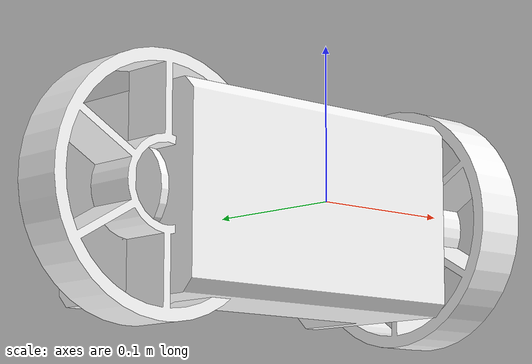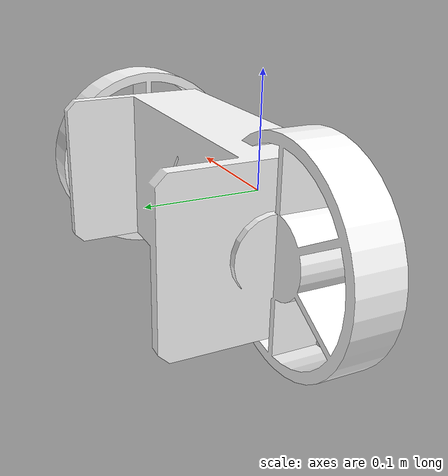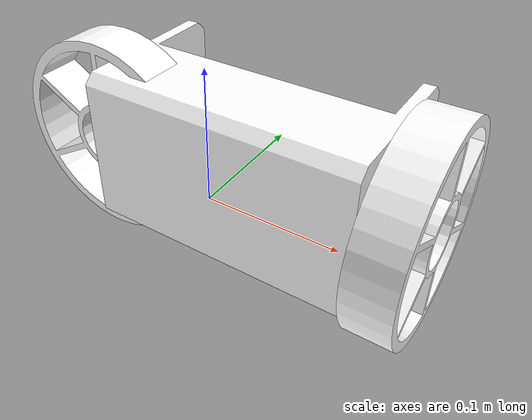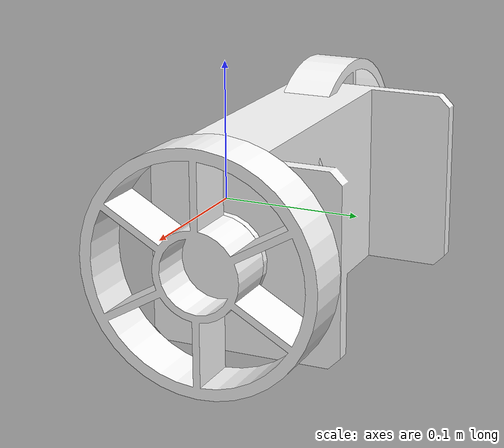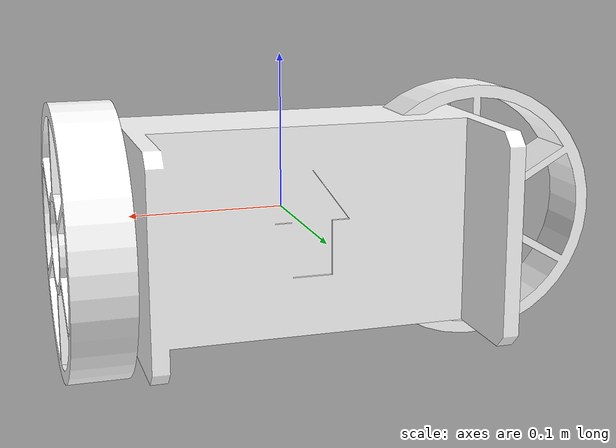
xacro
<?xml version="1.0" encoding="utf-8"?>
<robot
  name="bp001_description">
  <link
    name="base_link">
    <inertial>
      <origin
        xyz="7.75919318807567E-19 0.0409942367796753 -3.55522513016651E-06"
        rpy="0 0 0" />
      <mass
        value="2.25389477631104" />
      <inertia
        ixx="0.00466922459360897"
        ixy="1.20415183424488E-19"
        ixz="3.12268591715857E-19"
        iyy="0.0133992461285469"
        iyz="2.40439281764469E-07"
        izz="0.0118661025979557" />
    </inertial>
    <visual>
      <origin
        xyz="0 0 0"
        rpy="0 0 0" />
      <geometry>
        <mesh
          filename="package://bp001_description/meshes/visual/base_link.STL" />
      </geometry>
      <material
        name="">
        <color
          rgba="1 1 1 1" />
      </material>
    </visual>
    <collision>
      <origin
        xyz="0 0 0"
        rpy="0 0 0" />
      <geometry>
        <mesh
          filename="package://bp001_description/meshes/collision/base_link.STL" />
      </geometry>
    </collision>
  </link>
  <link
    name="link_lw">
    <inertial>
      <origin
        xyz="0.0173372551398928 5.759281940243E-16 -2.96686112332856E-16"
        rpy="0 0 0" />
      <mass
        value="0.234199193964837" />
      <inertia
        ixx="0.00104446027104137"
        ixy="-1.91049732501677E-18"
        ixz="9.88807712839178E-19"
        iyy="0.000548765971685728"
        iyz="2.99522099805411E-19"
        izz="0.000548765971685726" />
    </inertial>
    <visual>
      <origin
        xyz="0 0 0"
        rpy="0 0 0" />
      <geometry>
        <mesh
          filename="package://bp001_description/meshes/visual/link_lw.STL" />
      </geometry>
      <material
        name="">
        <color
          rgba="1 1 1 1" />
      </material>
    </visual>
    <collision>
      <origin
        xyz="0 0 0"
        rpy="0 0 0" />
      <geometry>
        <mesh
          filename="package://bp001_description/meshes/collision/link_lw.STL" />
      </geometry>
    </collision>
  </link>
  <joint
    name="joint_lw"
    type="continuous">
    <origin
      xyz="0.1146 0.052 0"
      rpy="0 0 0" />
    <parent
      link="base_link" />
    <child
      link="link_lw" />
    <axis
      xyz="1 0 0" />
  </joint>
  <link
    name="link_rw">
    <inertial>
      <origin
        xyz="-0.0173372551398928 5.759281940243E-16 3.12622061363609E-16"
        rpy="0 0 0" />
      <mass
        value="0.234199193964837" />
      <inertia
        ixx="0.00104446027104137"
        ixy="1.9057238767979E-18"
        ixz="9.79559510477831E-19"
        iyy="0.000548765971685728"
        iyz="-2.15782470493603E-19"
        izz="0.000548765971685725" />
    </inertial>
    <visual>
      <origin
        xyz="0 0 0"
        rpy="0 0 0" />
      <geometry>
        <mesh
          filename="package://bp001_description/meshes/visual/link_rw.STL" />
      </geometry>
      <material
        name="">
        <color
          rgba="1 1 1 1" />
      </material>
    </visual>
    <collision>
      <origin
        xyz="0 0 0"
        rpy="0 0 0" />
      <geometry>
        <mesh
          filename="package://bp001_description/meshes/collision/link_rw.STL" />
      </geometry>
    </collision>
  </link>
  <joint
    name="joint_rw"
    type="continuous">
    <origin
      xyz="-0.1146 0.052 0"
      rpy="0 0 0" />
    <parent
      link="base_link" />
    <child
      link="link_rw" />
    <axis
      xyz="1 0 0" />
  </joint>
</robot>
